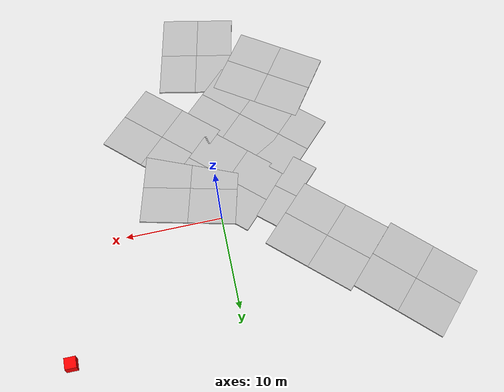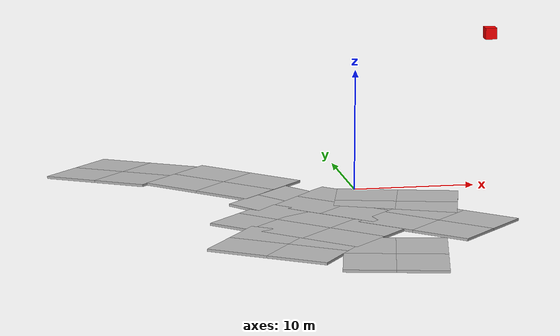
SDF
<sdf version="1.5">
 <world name="default">
  <physics name="default_physics" default="0" type="ode">
   <max_step_size>0.001</max_step_size>
   <real_time_factor>1</real_time_factor>
   <real_time_update_rate>1000</real_time_update_rate>
   <dart><collision_detector>bullet</collision_detector></dart>
  </physics>
  <gravity>0 0 -9.8</gravity>
  <magnetic_field>6e-06 2.3e-05 -4.2e-05</magnetic_field>
  <atmosphere type="adiabatic"/>
  <spherical_coordinates>
   <surface_model>EARTH_WGS84</surface_model>
   <latitude_deg>0</latitude_deg>
   <longitude_deg>0</longitude_deg>
   <elevation>0</elevation>
   <heading_deg>0</heading_deg>
  </spherical_coordinates>
  <scene>
   <sky><clouds><speed>12</speed></clouds></sky>
   <ambient>1 1 1 1</ambient>
   <shadows>1</shadows>
   <background>0.7 0.7 0.7 1</background>
  </scene>
  <include><uri>model://sun</uri></include>
  <model name="box1">
   <pose>15.0 15.0 10 0 0 0</pose>
   <link name="link">
    <collision name="collision"><geometry><box><size>1 1 1</size></box></geometry></collision>
    <visual name="visual">
     <geometry><box><size>1 1 1</size></box></geometry>
     <material><ambient>1 0 0 1</ambient><diffuse>1 0 0 1</diffuse></material>
    </visual>
   </link>
  </model>
  <model name="mud_box">
   <static>1</static>
   <link name="link">
    <collision name="collision">
     <geometry><box><size>8 10 0.2</size></box></geometry>
     <surface><friction><ode><mu>0.15</mu><mu2>0.15</mu2></ode></friction></surface>
    </collision>
    <visual name="visual_1">
     <pose>-2 2.5 0 0 -0 0</pose>
     <cast_shadows>0</cast_shadows>
     <geometry><box><size>4 5 0.2</size></box></geometry>
     <material><script><uri>model://urdf/gazebo.material</uri><name>Gazebo/Dirt</name></script></material>
    </visual>
    <visual name="visual_2">
     <pose>2 2.5 0 0 -0 0</pose>
     <cast_shadows>0</cast_shadows>
     <geometry><box><size>4 5 0.2</size></box></geometry>
     <material><script><uri>model://urdf/gazebo.material</uri><name>Gazebo/Dirt</name></script></material>
    </visual>
    <visual name="visual_3">
     <pose>2 -2.5 0 0 -0 0</pose>
     <cast_shadows>0</cast_shadows>
     <geometry><box><size>4 5 0.2</size></box></geometry>
     <material><script><uri>model://urdf/gazebo.material</uri><name>Gazebo/Dirt</name></script></material>
    </visual>
    <visual name="visual_4">
     <pose>-2 -2.5 0 0 -0 0</pose>
     <cast_shadows>0</cast_shadows>
     <geometry><box><size>4 5 0.2</size></box></geometry>
     <material><script><uri>model://urdf/gazebo.material</uri><name>Gazebo/Dirt</name></script></material>
    </visual>
   </link>
   <pose>-7.04174 -9.64287 -0.20001 0.003053 -0.000788 0.81082</pose>
  </model>
  <model name="mud_box_clone">
   <static>1</static>
   <link name="link">
    <collision name="collision">
     <geometry><box><size>8 10 0.2</size></box></geometry>
     <surface><friction><ode><mu>0.15</mu><mu2>0.15</mu2></ode></friction></surface>
    </collision>
    <visual name="visual_1">
     <pose>-2 2.5 0 0 -0 0</pose>
     <cast_shadows>0</cast_shadows>
     <geometry><box><size>4 5 0.2</size></box></geometry>
     <material><script><uri>model://urdf/gazebo.material</uri><name>Gazebo/Dirt</name></script></material>
    </visual>
    <visual name="visual_2">
     <pose>2 2.5 0 0 -0 0</pose>
     <cast_shadows>0</cast_shadows>
     <geometry><box><size>4 5 0.2</size></box></geometry>
     <material><script><uri>model://urdf/gazebo.material</uri><name>Gazebo/Dirt</name></script></material>
    </visual>
    <visual name="visual_3">
     <pose>2 -2.5 0 0 -0 0</pose>
     <cast_shadows>0</cast_shadows>
     <geometry><box><size>4 5 0.2</size></box></geometry>
     <material><script><uri>model://urdf/gazebo.material</uri><name>Gazebo/Dirt</name></script></material>
    </visual>
    <visual name="visual_4">
     <pose>-2 -2.5 0 0 -0 0</pose>
     <cast_shadows>0</cast_shadows>
     <geometry><box><size>4 5 0.2</size></box></geometry>
     <material><script><uri>model://urdf/gazebo.material</uri><name>Gazebo/Dirt</name></script></material>
    </visual>
   </link>
   <pose>-1.51821 -4.4989 -0.189201 0 -0 0.810832</pose>
  </model>
  <model name="mud_box_clone_0_clone">
   <static>1</static>
   <link name="link">
    <collision name="collision">
     <geometry><box><size>8 10 0.2</size></box></geometry>
     <surface><friction><ode><mu>0.15</mu><mu2>0.15</mu2></ode></friction></surface>
    </collision>
    <visual name="visual_1">
     <pose>-2 2.5 0 0 -0 0</pose>
     <cast_shadows>0</cast_shadows>
     <geometry><box><size>4 5 0.2</size></box></geometry>
     <material><script><uri>model://urdf/gazebo.material</uri><name>Gazebo/Dirt</name></script></material>
    </visual>
    <visual name="visual_2">
     <pose>2 2.5 0 0 -0 0</pose>
     <cast_shadows>0</cast_shadows>
     <geometry><box><size>4 5 0.2</size></box></geometry>
     <material><script><uri>model://urdf/gazebo.material</uri><name>Gazebo/Dirt</name></script></material>
    </visual>
    <visual name="visual_3">
     <pose>2 -2.5 0 0 -0 0</pose>
     <cast_shadows>0</cast_shadows>
     <geometry><box><size>4 5 0.2</size></box></geometry>
     <material><script><uri>model://urdf/gazebo.material</uri><name>Gazebo/Dirt</name></script></material>
    </visual>
    <visual name="visual_4">
     <pose>-2 -2.5 0 0 -0 0</pose>
     <cast_shadows>0</cast_shadows>
     <geometry><box><size>4 5 0.2</size></box></geometry>
     <material><script><uri>model://urdf/gazebo.material</uri><name>Gazebo/Dirt</name></script></material>
    </visual>
   </link>
   <pose>-10.2783 4.25582 0.003582 0.004023 -0 0.810832</pose>
  </model>
  <model name="mud_box_clone_2">
   <static>1</static>
   <link name="link">
    <collision name="collision">
     <geometry><box><size>8 10 0.2</size></box></geometry>
     <surface><friction><ode><mu>0.15</mu><mu2>0.15</mu2></ode></friction></surface>
    </collision>
    <visual name="visual_1">
     <pose>-2 2.5 0 0 -0 0</pose>
     <cast_shadows>0</cast_shadows>
     <geometry><box><size>4 5 0.2</size></box></geometry>
     <material><script><uri>model://urdf/gazebo.material</uri><name>Gazebo/Dirt</name></script></material>
    </visual>
    <visual name="visual_2">
     <pose>2 2.5 0 0 -0 0</pose>
     <cast_shadows>0</cast_shadows>
     <geometry><box><size>4 5 0.2</size></box></geometry>
     <material><script><uri>model://urdf/gazebo.material</uri><name>Gazebo/Dirt</name></script></material>
    </visual>
    <visual name="visual_3">
     <pose>2 -2.5 0 0 -0 0</pose>
     <cast_shadows>0</cast_shadows>
     <geometry><box><size>4 5 0.2</size></box></geometry>
     <material><script><uri>model://urdf/gazebo.material</uri><name>Gazebo/Dirt</name></script></material>
    </visual>
    <visual name="visual_4">
     <pose>-2 -2.5 0 0 -0 0</pose>
     <cast_shadows>0</cast_shadows>
     <geometry><box><size>4 5 0.2</size></box></geometry>
     <material><script><uri>model://urdf/gazebo.material</uri><name>Gazebo/Dirt</name></script></material>
    </visual>
   </link>
   <pose>2.59837 -4.23925 -0.180582 -0.000527 -0.0031 1.32936</pose>
  </model>
  <model name="mud_box_clone_0_clone_clone">
   <static>1</static>
   <link name="link">
    <collision name="collision">
     <geometry><box><size>8 10 0.2</size></box></geometry>
     <surface><friction><ode><mu>0.15</mu><mu2>0.15</mu2></ode></friction></surface>
    </collision>
    <visual name="visual_1">
     <pose>-2 2.5 0 0 -0 0</pose>
     <cast_shadows>0</cast_shadows>
     <geometry><box><size>4 5 0.2</size></box></geometry>
     <material><script><uri>model://urdf/gazebo.material</uri><name>Gazebo/Dirt</name></script></material>
    </visual>
    <visual name="visual_2">
     <pose>2 2.5 0 0 -0 0</pose>
     <cast_shadows>0</cast_shadows>
     <geometry><box><size>4 5 0.2</size></box></geometry>
     <material><script><uri>model://urdf/gazebo.material</uri><name>Gazebo/Dirt</name></script></material>
    </visual>
    <visual name="visual_3">
     <pose>2 -2.5 0 0 -0 0</pose>
     <cast_shadows>0</cast_shadows>
     <geometry><box><size>4 5 0.2</size></box></geometry>
     <material><script><uri>model://urdf/gazebo.material</uri><name>Gazebo/Dirt</name></script></material>
    </visual>
    <visual name="visual_4">
     <pose>-2 -2.5 0 0 -0 0</pose>
     <cast_shadows>0</cast_shadows>
     <geometry><box><size>4 5 0.2</size></box></geometry>
     <material><script><uri>model://urdf/gazebo.material</uri><name>Gazebo/Dirt</name></script></material>
    </visual>
   </link>
   <pose>-4.67392 -4.14592 -0.319955 0.058676 0.002538 0.810994</pose>
  </model>
  <model name="mud_box_clone_clone">
   <static>1</static>
   <link name="link">
    <collision name="collision">
     <geometry><box><size>8 10 0.2</size></box></geometry>
     <surface><friction><ode><mu>0.15</mu><mu2>0.15</mu2></ode></friction></surface>
    </collision>
    <visual name="visual_1">
     <pose>-2 2.5 0 0 -0 0</pose>
     <cast_shadows>0</cast_shadows>
     <geometry><box><size>4 5 0.2</size></box></geometry>
     <material><script><uri>model://urdf/gazebo.material</uri><name>Gazebo/Dirt</name></script></material>
    </visual>
    <visual name="visual_2">
     <pose>2 2.5 0 0 -0 0</pose>
     <cast_shadows>0</cast_shadows>
     <geometry><box><size>4 5 0.2</size></box></geometry>
     <material><script><uri>model://urdf/gazebo.material</uri><name>Gazebo/Dirt</name></script></material>
    </visual>
    <visual name="visual_3">
     <pose>2 -2.5 0 0 -0 0</pose>
     <cast_shadows>0</cast_shadows>
     <geometry><box><size>4 5 0.2</size></box></geometry>
     <material><script><uri>model://urdf/gazebo.material</uri><name>Gazebo/Dirt</name></script></material>
    </visual>
    <visual name="visual_4">
     <pose>-2 -2.5 0 0 -0 0</pose>
     <cast_shadows>0</cast_shadows>
     <geometry><box><size>4 5 0.2</size></box></geometry>
     <material><script><uri>model://urdf/gazebo.material</uri><name>Gazebo/Dirt</name></script></material>
    </visual>
   </link>
   <pose>-4.35601 -12.1853 -0.195277 0 -0 0.810832</pose>
  </model>
  <model name="mud_box_clone_clone_0">
   <static>1</static>
   <link name="link">
    <collision name="collision">
     <geometry><box><size>8 10 0.2</size></box></geometry>
     <surface><friction><ode><mu>0.15</mu><mu2>0.15</mu2></ode></friction></surface>
    </collision>
    <visual name="visual_1">
     <pose>-2 2.5 0 0 -0 0</pose>
     <cast_shadows>0</cast_shadows>
     <geometry><box><size>4 5 0.2</size></box></geometry>
     <material><script><uri>model://urdf/gazebo.material</uri><name>Gazebo/Dirt</name></script></material>
    </visual>
    <visual name="visual_2">
     <pose>2 2.5 0 0 -0 0</pose>
     <cast_shadows>0</cast_shadows>
     <geometry><box><size>4 5 0.2</size></box></geometry>
     <material><script><uri>model://urdf/gazebo.material</uri><name>Gazebo/Dirt</name></script></material>
    </visual>
    <visual name="visual_3">
     <pose>2 -2.5 0 0 -0 0</pose>
     <cast_shadows>0</cast_shadows>
     <geometry><box><size>4 5 0.2</size></box></geometry>
     <material><script><uri>model://urdf/gazebo.material</uri><name>Gazebo/Dirt</name></script></material>
    </visual>
    <visual name="visual_4">
     <pose>-2 -2.5 0 0 -0 0</pose>
     <cast_shadows>0</cast_shadows>
     <geometry><box><size>4 5 0.2</size></box></geometry>
     <material><script><uri>model://urdf/gazebo.material</uri><name>Gazebo/Dirt</name></script></material>
    </visual>
   </link>
   <pose>4.57541 -11.1345 -0.189201 0 -0 0.810832</pose>
  </model>
  <model name="mud_box_clone_clone_clone">
   <static>1</static>
   <link name="link">
    <collision name="collision">
     <geometry><box><size>8 10 0.2</size></box></geometry>
     <surface><friction><ode><mu>0.15</mu><mu2>0.15</mu2></ode></friction></surface>
    </collision>
    <visual name="visual_1">
     <pose>-2 2.5 0 0 -0 0</pose>
     <cast_shadows>0</cast_shadows>
     <geometry><box><size>4 5 0.2</size></box></geometry>
     <material><script><uri>model://urdf/gazebo.material</uri><name>Gazebo/Dirt</name></script></material>
    </visual>
    <visual name="visual_2">
     <pose>2 2.5 0 0 -0 0</pose>
     <cast_shadows>0</cast_shadows>
     <geometry><box><size>4 5 0.2</size></box></geometry>
     <material><script><uri>model://urdf/gazebo.material</uri><name>Gazebo/Dirt</name></script></material>
    </visual>
    <visual name="visual_3">
     <pose>2 -2.5 0 0 -0 0</pose>
     <cast_shadows>0</cast_shadows>
     <geometry><box><size>4 5 0.2</size></box></geometry>
     <material><script><uri>model://urdf/gazebo.material</uri><name>Gazebo/Dirt</name></script></material>
    </visual>
    <visual name="visual_4">
     <pose>-2 -2.5 0 0 -0 0</pose>
     <cast_shadows>0</cast_shadows>
     <geometry><box><size>4 5 0.2</size></box></geometry>
     <material><script><uri>model://urdf/gazebo.material</uri><name>Gazebo/Dirt</name></script></material>
    </visual>
   </link>
   <pose>-0.98051 -21.0462 -0.195578 0 0 -0.20393</pose>
  </model>
  <model name="mud_box_clone_clone_clone_0">
   <static>1</static>
   <link name="link">
    <collision name="collision">
     <geometry><box><size>8 10 0.2</size></box></geometry>
     <surface><friction><ode><mu>0.15</mu><mu2>0.15</mu2></ode></friction></surface>
    </collision>
    <visual name="visual_1">
     <pose>-2 2.5 0 0 -0 0</pose>
     <cast_shadows>0</cast_shadows>
     <geometry><box><size>4 5 0.2</size></box></geometry>
     <material><script><uri>model://urdf/gazebo.material</uri><name>Gazebo/Dirt</name></script></material>
    </visual>
    <visual name="visual_2">
     <pose>2 2.5 0 0 -0 0</pose>
     <cast_shadows>0</cast_shadows>
     <geometry><box><size>4 5 0.2</size></box></geometry>
     <material><script><uri>model://urdf/gazebo.material</uri><name>Gazebo/Dirt</name></script></material>
    </visual>
    <visual name="visual_3">
     <pose>2 -2.5 0 0 -0 0</pose>
     <cast_shadows>0</cast_shadows>
     <geometry><box><size>4 5 0.2</size></box></geometry>
     <material><script><uri>model://urdf/gazebo.material</uri><name>Gazebo/Dirt</name></script></material>
    </visual>
    <visual name="visual_4">
     <pose>-2 -2.5 0 0 -0 0</pose>
     <cast_shadows>0</cast_shadows>
     <geometry><box><size>4 5 0.2</size></box></geometry>
     <material><script><uri>model://urdf/gazebo.material</uri><name>Gazebo/Dirt</name></script></material>
    </visual>
   </link>
   <pose>-8.50725 -16.7398 -0.195277 0 -0 0.969214</pose>
  </model>
  <model name="mud_box_clone_0_clone_clone_0">
   <static>1</static>
   <link name="link">
    <collision name="collision">
     <geometry><box><size>8 10 0.2</size></box></geometry>
     <surface><friction><ode><mu>0.15</mu><mu2>0.15</mu2></ode></friction></surface>
    </collision>
    <visual name="visual_1">
     <pose>-2 2.5 0 0 -0 0</pose>
     <cast_shadows>0</cast_shadows>
     <geometry><box><size>4 5 0.2</size></box></geometry>
     <material><script><uri>model://urdf/gazebo.material</uri><name>Gazebo/Dirt</name></script></material>
    </visual>
    <visual name="visual_2">
     <pose>2 2.5 0 0 -0 0</pose>
     <cast_shadows>0</cast_shadows>
     <geometry><box><size>4 5 0.2</size></box></geometry>
     <material><script><uri>model://urdf/gazebo.material</uri><name>Gazebo/Dirt</name></script></material>
    </visual>
    <visual name="visual_3">
     <pose>2 -2.5 0 0 -0 0</pose>
     <cast_shadows>0</cast_shadows>
     <geometry><box><size>4 5 0.2</size></box></geometry>
     <material><script><uri>model://urdf/gazebo.material</uri><name>Gazebo/Dirt</name></script></material>
    </visual>
    <visual name="visual_4">
     <pose>-2 -2.5 0 0 -0 0</pose>
     <cast_shadows>0</cast_shadows>
     <geometry><box><size>4 5 0.2</size></box></geometry>
     <material><script><uri>model://urdf/gazebo.material</uri><name>Gazebo/Dirt</name></script></material>
    </visual>
   </link>
   <pose>-17.9288 10.6707 -0.271841 -0.057129 -0.00095 0.810886</pose>
  </model>
 </world>
</sdf>
